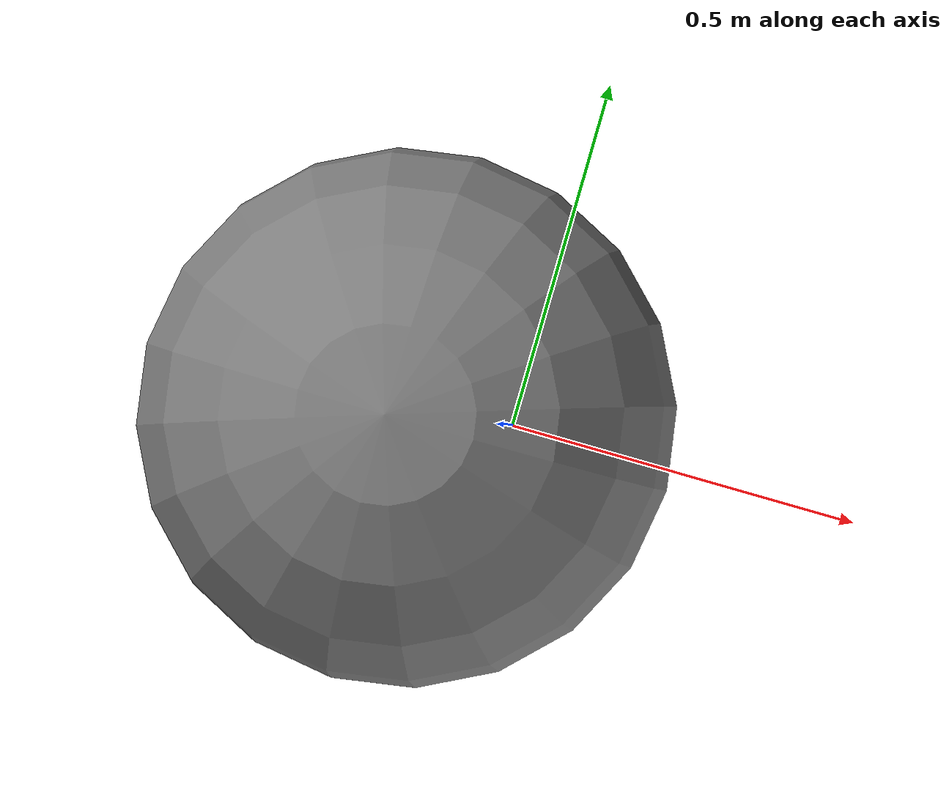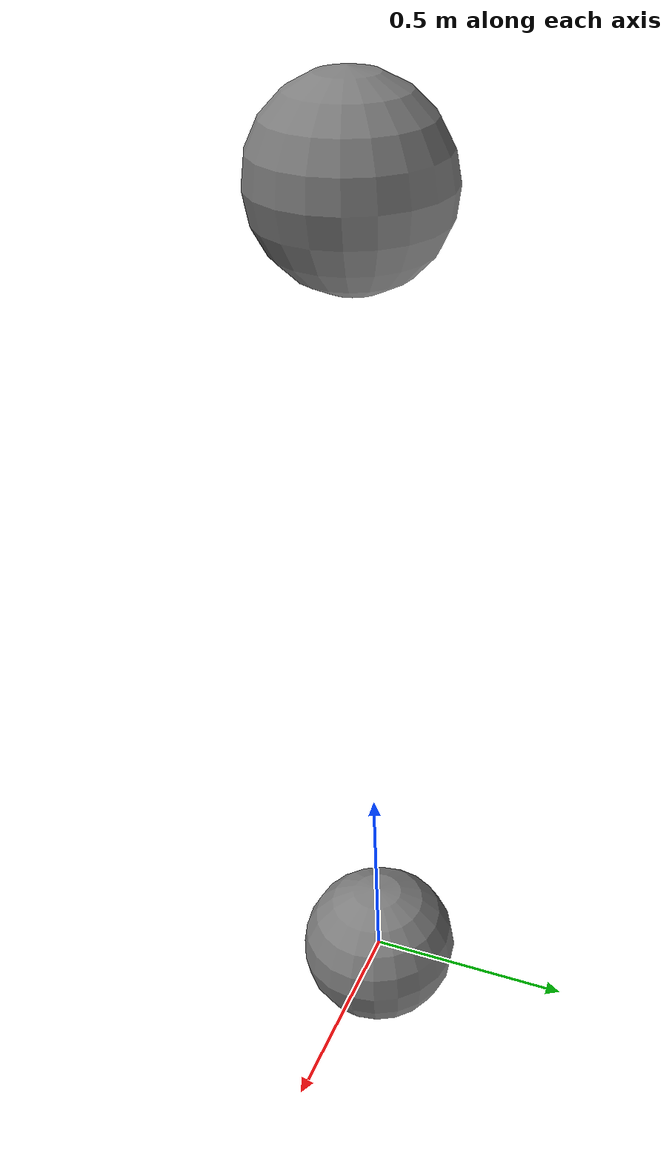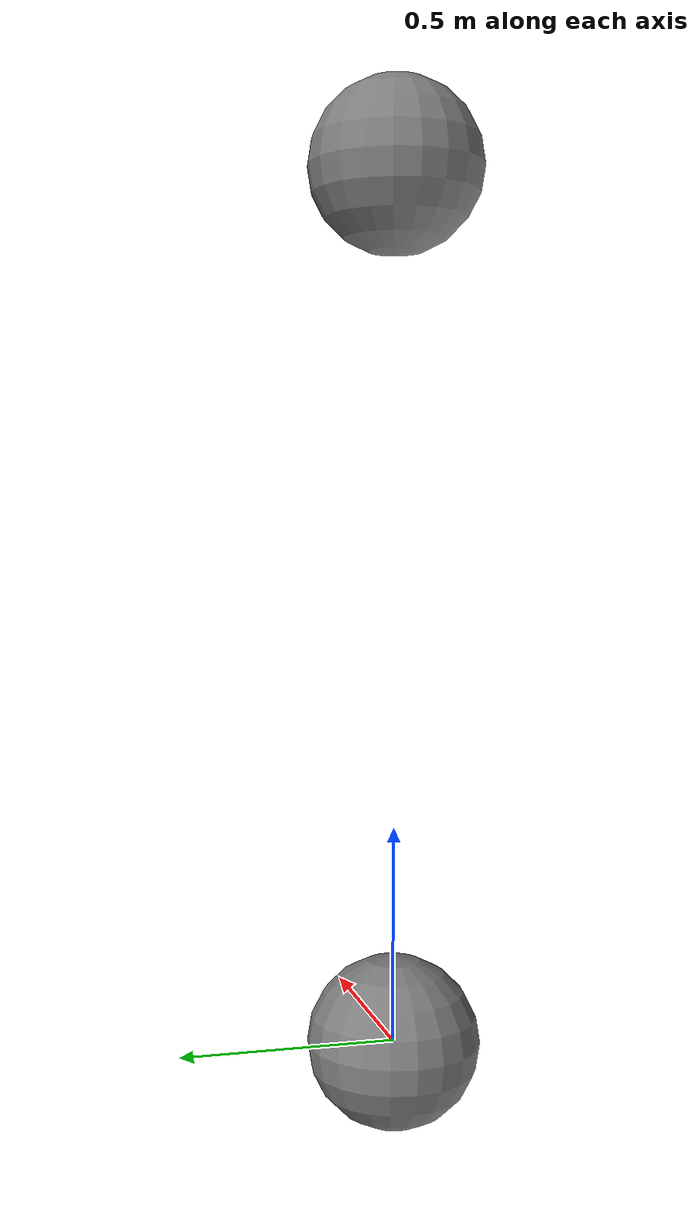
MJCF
<mujoco model="Ejemplo 6">

  <worldbody>

    <!-- En el mundo hay una bola FIJA en el origen -->
    <geom type="sphere" size="0.2"/>

    <!-- Bola libre a 2m de la bola del mundo -->
    <body pos="0 0 2">
      <geom type="sphere" size="0.2"/>
      <joint type="free"/>
    </body>

  </worldbody>
</mujoco>
